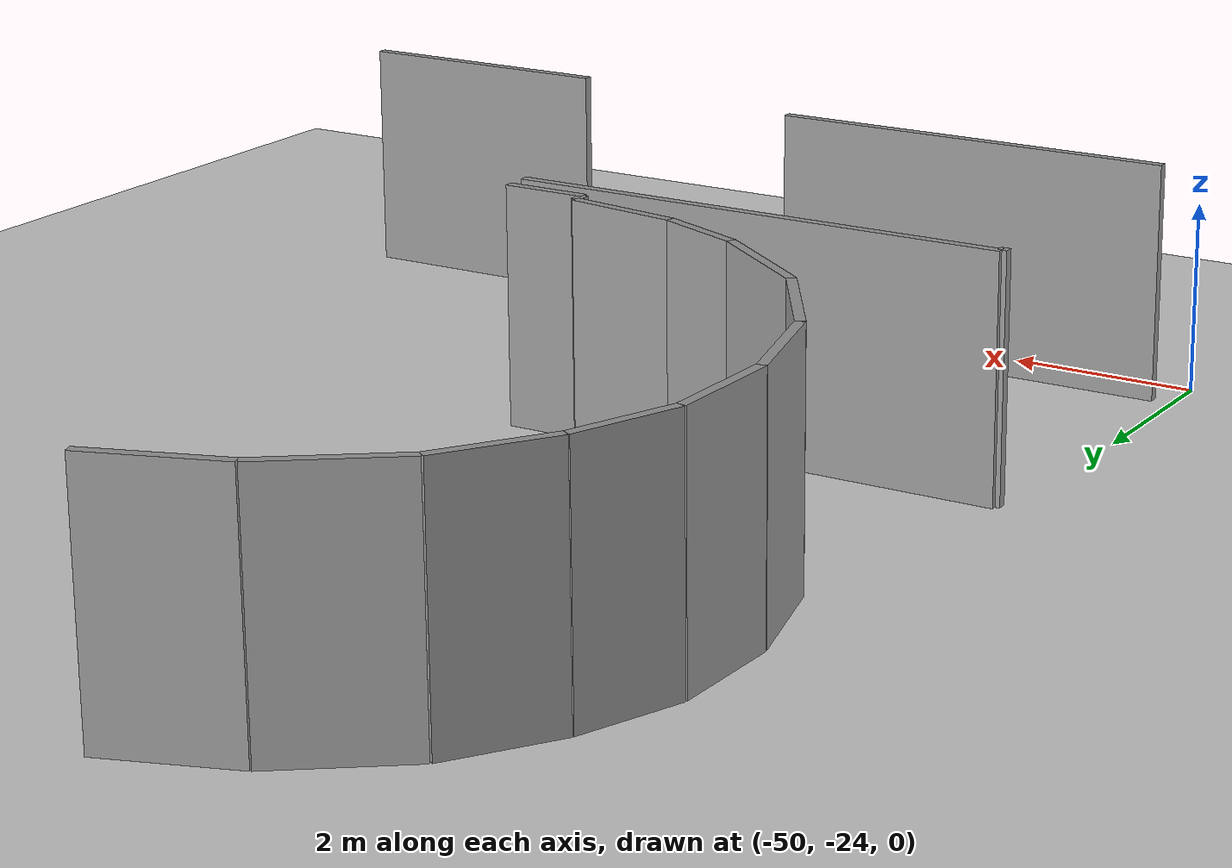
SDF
<sdf version="1.6">
 <world name="default">
  <model name="ground_plane">
   <static>1</static>
   <link name="link">
    <collision name="collision">
     <geometry><plane><normal>0 0 1</normal><size>100 100</size></plane></geometry>
     <surface><friction><ode><mu>100</mu><mu2>50</mu2></ode></friction></surface>
    </collision>
    <visual name="visual">
     <cast_shadows>0</cast_shadows>
     <geometry><plane><normal>0 0 1</normal><size>100 100</size></plane></geometry>
     <material>
      <script><uri>file://media/materials/scripts/gazebo.material</uri><name>Gazebo/Grey</name></script>
     </material>
    </visual>
   </link>
  </model>
  <model name="0510032216_A-40">
   <static>1</static>
   <link name="Wall_20">
    <collision name="Wall_20_Collision">
     <geometry><box><size>0.884882724474 0.1 2.5</size></box></geometry>
     <pose>0.442441362237 0 1.25 0 0 0</pose>
    </collision>
    <visual name="Wall_20_Visual">
     <pose>0.442441362237 0 1.25 0 0 0</pose>
     <geometry><box><size>0.884882724474 0.1 2.5</size></box></geometry>
     <material>
      <script><uri>file://media/materials/scripts/gazebo.material</uri><name>Gazebo/Grey</name></script>
      <ambient>1 1 1 1</ambient>
     </material>
    </visual>
    <pose>24.716158314 -51.5537118736 0 0 0 3.14159265359</pose>
   </link>
   <link name="Wall_21">
    <collision name="Wall_21_Collision">
     <geometry><box><size>0.158567937284 0.1 2.5</size></box></geometry>
     <pose>0.0792839686419 0 1.25 0 0 0</pose>
    </collision>
    <visual name="Wall_21_Visual">
     <pose>0.0792839686419 0 1.25 0 0 0</pose>
     <geometry><box><size>0.158567937284 0.1 2.5</size></box></geometry>
     <material>
      <script><uri>file://media/materials/scripts/gazebo.material</uri><name>Gazebo/Grey</name></script>
      <ambient>1 1 1 1</ambient>
     </material>
    </visual>
    <pose>23.8312755896 -51.5537118736 0 0 0 1.57079632679</pose>
   </link>
   <link name="Wall_22">
    <collision name="Wall_22_Collision">
     <geometry><box><size>1.19828313626 0.1 2.5</size></box></geometry>
     <pose>0.599141568131 0 1.25 0 0 0</pose>
    </collision>
    <visual name="Wall_22_Visual">
     <pose>0.599141568131 0 1.25 0 0 0</pose>
     <geometry><box><size>1.19828313626 0.1 2.5</size></box></geometry>
     <material>
      <script><uri>file://media/materials/scripts/gazebo.material</uri><name>Gazebo/Grey</name></script>
      <ambient>1 1 1 1</ambient>
     </material>
    </visual>
    <pose>23.8312755896 -51.3951439363 0 0 0 2.9947510783</pose>
   </link>
   <link name="Wall_23">
    <collision name="Wall_23_Collision">
     <geometry><box><size>0.947020817735 0.1 2.5</size></box></geometry>
     <pose>0.473510408868 0 1.25 0 0 0</pose>
    </collision>
    <visual name="Wall_23_Visual">
     <pose>0.473510408868 0 1.25 0 0 0</pose>
     <geometry><box><size>0.947020817735 0.1 2.5</size></box></geometry>
     <material>
      <script><uri>file://media/materials/scripts/gazebo.material</uri><name>Gazebo/Grey</name></script>
      <ambient>1 1 1 1</ambient>
     </material>
    </visual>
    <pose>22.6458882153 -51.2198178183 0 0 0 2.75289606404</pose>
   </link>
   <link name="Wall_24">
    <collision name="Wall_24_Collision">
     <geometry><box><size>1.36073929065 0.1 2.5</size></box></geometry>
     <pose>0.680369645325 0 1.25 0 0 0</pose>
    </collision>
    <visual name="Wall_24_Visual">
     <pose>0.680369645325 0 1.25 0 0 0</pose>
     <geometry><box><size>1.36073929065 0.1 2.5</size></box></geometry>
     <material>
      <script><uri>file://media/materials/scripts/gazebo.material</uri><name>Gazebo/Grey</name></script>
      <ambient>1 1 1 1</ambient>
     </material>
    </visual>
    <pose>21.7695115371 -50.8609134478 0 0 0 2.50424933224</pose>
   </link>
   <link name="Wall_25">
    <collision name="Wall_25_Collision">
     <geometry><box><size>1.3291789881 0.1 2.5</size></box></geometry>
     <pose>0.664589494048 0 1.25 0 0 0</pose>
    </collision>
    <visual name="Wall_25_Visual">
     <pose>0.664589494048 0 1.25 0 0 0</pose>
     <geometry><box><size>1.3291789881 0.1 2.5</size></box></geometry>
     <material>
      <script><uri>file://media/materials/scripts/gazebo.material</uri><name>Gazebo/Grey</name></script>
      <ambient>1 1 1 1</ambient>
     </material>
    </visual>
    <pose>20.6759132891 -50.0511886248 0 0 0 2.14139348688</pose>
   </link>
   <link name="Wall_26">
    <collision name="Wall_26_Collision">
     <geometry><box><size>1.26137519619 0.1 2.5</size></box></geometry>
     <pose>0.630687598094 0 1.25 0 0 0</pose>
    </collision>
    <visual name="Wall_26_Visual">
     <pose>0.630687598094 0 1.25 0 0 0</pose>
     <geometry><box><size>1.26137519619 0.1 2.5</size></box></geometry>
     <material>
      <script><uri>file://media/materials/scripts/gazebo.material</uri><name>Gazebo/Grey</name></script>
      <ambient>1 1 1 1</ambient>
     </material>
    </visual>
    <pose>19.9579775923 -48.9325800616 0 0 0 1.83181365359</pose>
   </link>
   <link name="Wall_27">
    <collision name="Wall_27_Collision">
     <geometry><box><size>1.21085813327 0.1 2.5</size></box></geometry>
     <pose>0.605429066636 0 1.25 0 0 0</pose>
    </collision>
    <visual name="Wall_27_Visual">
     <pose>0.605429066636 0 1.25 0 0 0</pose>
     <geometry><box><size>1.21085813327 0.1 2.5</size></box></geometry>
     <material>
      <script><uri>file://media/materials/scripts/gazebo.material</uri><name>Gazebo/Grey</name></script>
      <ambient>1 1 1 1</ambient>
     </material>
    </visual>
    <pose>19.6324626274 -47.7139302377 0 0 0 1.54321783721</pose>
   </link>
   <link name="Wall_28">
    <collision name="Wall_28_Collision">
     <geometry><box><size>1.10222361702 0.1 2.5</size></box></geometry>
     <pose>0.551111808512 0 1.25 0 0 0</pose>
    </collision>
    <visual name="Wall_28_Visual">
     <pose>0.551111808512 0 1.25 0 0 0</pose>
     <geometry><box><size>1.10222361702 0.1 2.5</size></box></geometry>
     <material>
      <script><uri>file://media/materials/scripts/gazebo.material</uri><name>Gazebo/Grey</name></script>
      <ambient>1 1 1 1</ambient>
     </material>
    </visual>
    <pose>19.6658520329 -46.5035325483 0 0 0 1.198759973</pose>
   </link>
   <link name="Wall_29">
    <collision name="Wall_29_Collision">
     <geometry><box><size>1.16465529562 0.1 2.5</size></box></geometry>
     <pose>0.582327647812 0 1.25 0 0 0</pose>
    </collision>
    <visual name="Wall_29_Visual">
     <pose>0.582327647812 0 1.25 0 0 0</pose>
     <geometry><box><size>1.16465529562 0.1 2.5</size></box></geometry>
     <material>
      <script><uri>file://media/materials/scripts/gazebo.material</uri><name>Gazebo/Grey</name></script>
      <ambient>1 1 1 1</ambient>
     </material>
    </visual>
    <pose>20.0665248992 -45.4767131114 0 0 0 0.968795302871</pose>
   </link>
   <link name="Wall_30">
    <collision name="Wall_30_Collision">
     <geometry><box><size>1.35574257779 0.1 2.5</size></box></geometry>
     <pose>0.677871288893 0 1.25 0 0 0</pose>
    </collision>
    <visual name="Wall_30_Visual">
     <pose>0.677871288893 0 1.25 0 0 0</pose>
     <geometry><box><size>1.35574257779 0.1 2.5</size></box></geometry>
     <material>
      <script><uri>file://media/materials/scripts/gazebo.material</uri><name>Gazebo/Grey</name></script>
      <ambient>1 1 1 1</ambient>
     </material>
    </visual>
    <pose>20.7260608754 -44.5167994414 0 0 0 0.6325071894</pose>
   </link>
   <link name="Wall_31">
    <collision name="Wall_31_Collision">
     <geometry><box><size>1.33589536492 0.1 2.5</size></box></geometry>
     <pose>0.667947682459 0 1.25 0 0 0</pose>
    </collision>
    <visual name="Wall_31_Visual">
     <pose>0.667947682459 0 1.25 0 0 0</pose>
     <geometry><box><size>1.33589536492 0.1 2.5</size></box></geometry>
     <material>
      <script><uri>file://media/materials/scripts/gazebo.material</uri><name>Gazebo/Grey</name></script>
      <ambient>1 1 1 1</ambient>
     </material>
    </visual>
    <pose>21.8195321675 -43.7153267528 0 0 0 0.337468655107</pose>
   </link>
   <link name="Wall_60">
    <collision name="Wall_60_Collision">
     <geometry><box><size>4.3592852382 0.1 2.5</size></box></geometry>
     <pose>2.1796426191 0 1.25 0 0 0</pose>
    </collision>
    <visual name="Wall_60_Visual">
     <pose>2.1796426191 0 1.25 0 0 0</pose>
     <geometry><box><size>4.3592852382 0.1 2.5</size></box></geometry>
     <material>
      <script><uri>file://media/materials/scripts/gazebo.material</uri><name>Gazebo/Grey</name></script>
      <ambient>1 1 1 1</ambient>
     </material>
    </visual>
    <pose>23.829117339 -55.5605674929 0 0 0 3.14159265359</pose>
   </link>
   <link name="Wall_62">
    <collision name="Wall_62_Collision">
     <geometry><box><size>0.0943282445171 0.1 2.5</size></box></geometry>
     <pose>0.0471641222585 0 1.25 0 0 0</pose>
    </collision>
    <visual name="Wall_62_Visual">
     <pose>0.0471641222585 0 1.25 0 0 0</pose>
     <geometry><box><size>0.0943282445171 0.1 2.5</size></box></geometry>
     <material>
      <script><uri>file://media/materials/scripts/gazebo.material</uri><name>Gazebo/Grey</name></script>
      <ambient>1 1 1 1</ambient>
     </material>
    </visual>
    <pose>19.4698321008 -51.9221379376 0 0 0 1.57079632679</pose>
   </link>
   <link name="Wall_63">
    <collision name="Wall_63_Collision">
     <geometry><box><size>5.25216618529 0.1 2.5</size></box></geometry>
     <pose>2.62608309265 0 1.25 0 0 0</pose>
    </collision>
    <visual name="Wall_63_Visual">
     <pose>2.62608309265 0 1.25 0 0 0</pose>
     <geometry><box><size>5.25216618529 0.1 2.5</size></box></geometry>
     <material>
      <script><uri>file://media/materials/scripts/gazebo.material</uri><name>Gazebo/Grey</name></script>
      <ambient>1 1 1 1</ambient>
     </material>
    </visual>
    <pose>19.4698321008 -51.8278096931 0 0 0 0.0</pose>
   </link>
   <link name="Wall_78">
    <collision name="Wall_78_Collision">
     <geometry><box><size>2.87034627226 0.1 2.5</size></box></geometry>
     <pose>1.43517313613 0 1.25 0 0 0</pose>
    </collision>
    <visual name="Wall_78_Visual">
     <pose>1.43517313613 0 1.25 0 0 0</pose>
     <geometry><box><size>2.87034627226 0.1 2.5</size></box></geometry>
     <material>
      <script><uri>file://media/materials/scripts/gazebo.material</uri><name>Gazebo/Grey</name></script>
      <ambient>1 1 1 1</ambient>
     </material>
    </visual>
    <pose>26.6607420573 -56.0088488272 0 0 0 0.0</pose>
   </link>
   <pose>-69.25 32.0461944965 0 0 0 0</pose>
  </model>
 </world>
</sdf>
